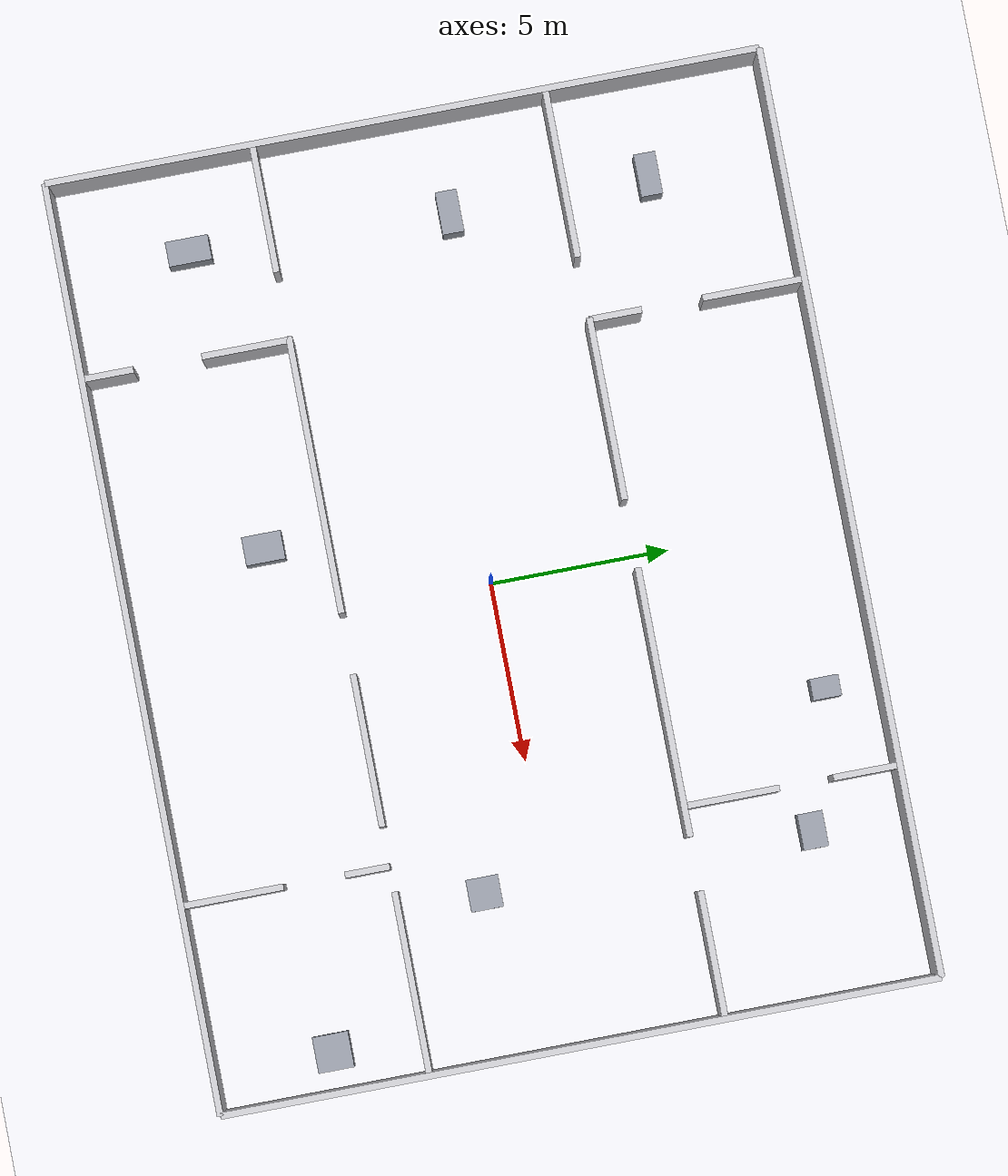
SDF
<?xml version="1.0"?>
<sdf version="1.9"><world name="new_room_world">
<plugin filename="gz-sim-physics-system" name="gz::sim::systems::Physics"/><plugin filename="gz-sim-user-commands-system" name="gz::sim::systems::UserCommands"/><plugin filename="gz-sim-scene-broadcaster-system" name="gz::sim::systems::SceneBroadcaster"/><plugin filename="gz-sim-sensors-system" name="gz::sim::systems::Sensors"><render_engine>ogre2</render_engine></plugin><plugin filename="gz-sim-imu-system" name="gz::sim::systems::Imu"/>
<physics name="new_room_realtime" type="ignored"><max_step_size>0.001</max_step_size><real_time_factor>1</real_time_factor></physics><gravity>0 0 -9.8</gravity><scene><ambient>0.85 0.85 0.87 1</ambient><background>0.68 0.68 0.71 1</background><shadows>false</shadows></scene><light name="sun" type="directional"><cast_shadows>false</cast_shadows><pose>0 0 10 0 0 0</pose><diffuse>0.95 0.95 0.95 1</diffuse><direction>-0.3 0.2 -1</direction></light>
<model name="new_room_ground"><static>true</static><link name="ground_link"><collision name="ground_collision"><geometry><plane><normal>0 0 1</normal><size>40 32</size></plane></geometry></collision><visual name="ground_visual"><geometry><plane><normal>0 0 1</normal><size>40 32</size></plane></geometry><material><ambient>0.92 0.92 0.94 1</ambient><diffuse>0.92 0.92 0.94 1</diffuse></material></visual></link></model>
<model name="mini_hospital_structure"><static>true</static><link name="structure">
<collision name="mx048_c000"><pose>0 10 1.25 0 0 0</pose><geometry><box><size>26 0.18 2.5</size></box></geometry></collision><visual name="mx048_v000"><pose>0 10 1.25 0 0 0</pose><geometry><box><size>26 0.18 2.5</size></box></geometry><material><ambient>0.78 0.78 0.80 1</ambient><diffuse>0.78 0.78 0.80 1</diffuse></material></visual>
<collision name="mx048_c001"><pose>0 -10 1.25 0 0 0</pose><geometry><box><size>26 0.18 2.5</size></box></geometry></collision><visual name="mx048_v001"><pose>0 -10 1.25 0 0 0</pose><geometry><box><size>26 0.18 2.5</size></box></geometry><material><ambient>0.78 0.78 0.80 1</ambient><diffuse>0.78 0.78 0.80 1</diffuse></material></visual>
<collision name="mx048_c002"><pose>-13 0 1.25 0 0 0</pose><geometry><box><size>0.18 20 2.5</size></box></geometry></collision><visual name="mx048_v002"><pose>-13 0 1.25 0 0 0</pose><geometry><box><size>0.18 20 2.5</size></box></geometry><material><ambient>0.78 0.78 0.80 1</ambient><diffuse>0.78 0.78 0.80 1</diffuse></material></visual>
<collision name="mx048_c003"><pose>13 0 1.25 0 0 0</pose><geometry><box><size>0.18 20 2.5</size></box></geometry></collision><visual name="mx048_v003"><pose>13 0 1.25 0 0 0</pose><geometry><box><size>0.18 20 2.5</size></box></geometry><material><ambient>0.78 0.78 0.80 1</ambient><diffuse>0.78 0.78 0.80 1</diffuse></material></visual>
<collision name="mx048_c004"><pose>-10.58 4 1.25 0 0 0</pose><geometry><box><size>4.66 0.18 2.5</size></box></geometry></collision><visual name="mx048_v004"><pose>-10.58 4 1.25 0 0 0</pose><geometry><box><size>4.66 0.18 2.5</size></box></geometry><material><ambient>0.78 0.78 0.80 1</ambient><diffuse>0.78 0.78 0.80 1</diffuse></material></visual>
<collision name="mx048_c005"><pose>-4 4 1.25 0 0 0</pose><geometry><box><size>5.1 0.18 2.5</size></box></geometry></collision><visual name="mx048_v005"><pose>-4 4 1.25 0 0 0</pose><geometry><box><size>5.1 0.18 2.5</size></box></geometry><material><ambient>0.78 0.78 0.80 1</ambient><diffuse>0.78 0.78 0.80 1</diffuse></material></visual>
<collision name="mx048_c006"><pose>4.2 4 1.25 0 0 0</pose><geometry><box><size>7.5 0.18 2.5</size></box></geometry></collision><visual name="mx048_v006"><pose>4.2 4 1.25 0 0 0</pose><geometry><box><size>7.5 0.18 2.5</size></box></geometry><material><ambient>0.78 0.78 0.80 1</ambient><diffuse>0.78 0.78 0.80 1</diffuse></material></visual>
<collision name="mx048_c007"><pose>11.18 4 1.25 0 0 0</pose><geometry><box><size>3.46 0.18 2.5</size></box></geometry></collision><visual name="mx048_v007"><pose>11.18 4 1.25 0 0 0</pose><geometry><box><size>3.46 0.18 2.5</size></box></geometry><material><ambient>0.78 0.78 0.80 1</ambient><diffuse>0.78 0.78 0.80 1</diffuse></material></visual>
<collision name="mx048_c008"><pose>-11.155 -4.2 1.25 0 0 0</pose><geometry><box><size>3.51 0.18 2.5</size></box></geometry></collision><visual name="mx048_v008"><pose>-11.155 -4.2 1.25 0 0 0</pose><geometry><box><size>3.51 0.18 2.5</size></box></geometry><material><ambient>0.78 0.78 0.80 1</ambient><diffuse>0.78 0.78 0.80 1</diffuse></material></visual>
<collision name="mx048_c009"><pose>-3.725 -4.2 1.25 0 0 0</pose><geometry><box><size>7.75 0.18 2.5</size></box></geometry></collision><visual name="mx048_v009"><pose>-3.725 -4.2 1.25 0 0 0</pose><geometry><box><size>7.75 0.18 2.5</size></box></geometry><material><ambient>0.78 0.78 0.80 1</ambient><diffuse>0.78 0.78 0.80 1</diffuse></material></visual>
<collision name="mx048_c010"><pose>3.975 -4.2 1.25 0 0 0</pose><geometry><box><size>4.25 0.18 2.5</size></box></geometry></collision><visual name="mx048_v010"><pose>3.975 -4.2 1.25 0 0 0</pose><geometry><box><size>4.25 0.18 2.5</size></box></geometry><material><ambient>0.78 0.78 0.80 1</ambient><diffuse>0.78 0.78 0.80 1</diffuse></material></visual>
<collision name="mx048_c011"><pose>10.405 -4.2 1.25 0 0 0</pose><geometry><box><size>5.01 0.18 2.5</size></box></geometry></collision><visual name="mx048_v011"><pose>10.405 -4.2 1.25 0 0 0</pose><geometry><box><size>5.01 0.18 2.5</size></box></geometry><material><ambient>0.78 0.78 0.80 1</ambient><diffuse>0.78 0.78 0.80 1</diffuse></material></visual>
<collision name="mx048_c012"><pose>-6.5 4.725 1.25 0 0 0</pose><geometry><box><size>0.18 1.45 2.5</size></box></geometry></collision><visual name="mx048_v012"><pose>-6.5 4.725 1.25 0 0 0</pose><geometry><box><size>0.18 1.45 2.5</size></box></geometry><material><ambient>0.78 0.78 0.80 1</ambient><diffuse>0.78 0.78 0.80 1</diffuse></material></visual>
<collision name="mx048_c013"><pose>-6.5 8.53 1.25 0 0 0</pose><geometry><box><size>0.18 2.76 2.5</size></box></geometry></collision><visual name="mx048_v013"><pose>-6.5 8.53 1.25 0 0 0</pose><geometry><box><size>0.18 2.76 2.5</size></box></geometry><material><ambient>0.78 0.78 0.80 1</ambient><diffuse>0.78 0.78 0.80 1</diffuse></material></visual>
<collision name="mx048_c014"><pose>7.1 5.325 1.25 0 0 0</pose><geometry><box><size>0.18 2.65 2.5</size></box></geometry></collision><visual name="mx048_v014"><pose>7.1 5.325 1.25 0 0 0</pose><geometry><box><size>0.18 2.65 2.5</size></box></geometry><material><ambient>0.78 0.78 0.80 1</ambient><diffuse>0.78 0.78 0.80 1</diffuse></material></visual>
<collision name="mx048_c015"><pose>7.1 9.03 1.25 0 0 0</pose><geometry><box><size>0.18 1.76 2.5</size></box></geometry></collision><visual name="mx048_v015"><pose>7.1 9.03 1.25 0 0 0</pose><geometry><box><size>0.18 1.76 2.5</size></box></geometry><material><ambient>0.78 0.78 0.80 1</ambient><diffuse>0.78 0.78 0.80 1</diffuse></material></visual>
<collision name="mx048_c016"><pose>-7.5 -9.23 1.25 0 0 0</pose><geometry><box><size>0.18 1.36 2.5</size></box></geometry></collision><visual name="mx048_v016"><pose>-7.5 -9.23 1.25 0 0 0</pose><geometry><box><size>0.18 1.36 2.5</size></box></geometry><material><ambient>0.78 0.78 0.80 1</ambient><diffuse>0.78 0.78 0.80 1</diffuse></material></visual>
<collision name="mx048_c017"><pose>-7.5 -5.425 1.25 0 0 0</pose><geometry><box><size>0.18 2.45 2.5</size></box></geometry></collision><visual name="mx048_v017"><pose>-7.5 -5.425 1.25 0 0 0</pose><geometry><box><size>0.18 2.45 2.5</size></box></geometry><material><ambient>0.78 0.78 0.80 1</ambient><diffuse>0.78 0.78 0.80 1</diffuse></material></visual>
<collision name="mx048_c018"><pose>7.2 -8.53 1.25 0 0 0</pose><geometry><box><size>0.18 2.76 2.5</size></box></geometry></collision><visual name="mx048_v018"><pose>7.2 -8.53 1.25 0 0 0</pose><geometry><box><size>0.18 2.76 2.5</size></box></geometry><material><ambient>0.78 0.78 0.80 1</ambient><diffuse>0.78 0.78 0.80 1</diffuse></material></visual>
<collision name="mx048_c019"><pose>7.2 -4.825 1.25 0 0 0</pose><geometry><box><size>0.18 1.25 2.5</size></box></geometry></collision><visual name="mx048_v019"><pose>7.2 -4.825 1.25 0 0 0</pose><geometry><box><size>0.18 1.25 2.5</size></box></geometry><material><ambient>0.78 0.78 0.80 1</ambient><diffuse>0.78 0.78 0.80 1</diffuse></material></visual>
<collision name="mx048_c020"><pose>-10.3 6.4 0.6 0 0 0</pose><geometry><box><size>1.2 0.6 1.2</size></box></geometry></collision><visual name="mx048_v020"><pose>-10.3 6.4 0.6 0 0 0</pose><geometry><box><size>1.2 0.6 1.2</size></box></geometry><material><ambient>0.58 0.60 0.64 1</ambient><diffuse>0.58 0.60 0.64 1</diffuse></material></visual>
<collision name="mx048_c021"><pose>4.6 8.5 0.6 0 0 0</pose><geometry><box><size>0.6 0.8 1.2</size></box></geometry></collision><visual name="mx048_v021"><pose>4.6 8.5 0.6 0 0 0</pose><geometry><box><size>0.6 0.8 1.2</size></box></geometry><material><ambient>0.58 0.60 0.64 1</ambient><diffuse>0.58 0.60 0.64 1</diffuse></material></visual>
<collision name="mx048_c022"><pose>8.4 7.4 0.6 0 0 0</pose><geometry><box><size>1 0.7 1.2</size></box></geometry></collision><visual name="mx048_v022"><pose>8.4 7.4 0.6 0 0 0</pose><geometry><box><size>1 0.7 1.2</size></box></geometry><material><ambient>0.58 0.60 0.64 1</ambient><diffuse>0.58 0.60 0.64 1</diffuse></material></visual>
<collision name="mx048_c023"><pose>-10.6 -6.5 0.6 0 0 0</pose><geometry><box><size>0.7 1.2 1.2</size></box></geometry></collision><visual name="mx048_v023"><pose>-10.6 -6.5 0.6 0 0 0</pose><geometry><box><size>0.7 1.2 1.2</size></box></geometry><material><ambient>0.58 0.60 0.64 1</ambient><diffuse>0.58 0.60 0.64 1</diffuse></material></visual>
<collision name="mx048_c024"><pose>-2.1 -6 0.6 0 0 0</pose><geometry><box><size>0.8 1.1 1.2</size></box></geometry></collision><visual name="mx048_v024"><pose>-2.1 -6 0.6 0 0 0</pose><geometry><box><size>0.8 1.1 1.2</size></box></geometry><material><ambient>0.58 0.60 0.64 1</ambient><diffuse>0.58 0.60 0.64 1</diffuse></material></visual>
<collision name="mx048_c025"><pose>11.9 -6.7 0.6 0 0 0</pose><geometry><box><size>1 1 1.2</size></box></geometry></collision><visual name="mx048_v025"><pose>11.9 -6.7 0.6 0 0 0</pose><geometry><box><size>1 1 1.2</size></box></geometry><material><ambient>0.58 0.60 0.64 1</ambient><diffuse>0.58 0.60 0.64 1</diffuse></material></visual>
<collision name="mx048_c026"><pose>-10.3 0.8 0.6 0 0 0</pose><geometry><box><size>1.2 0.6 1.2</size></box></geometry></collision><visual name="mx048_v026"><pose>-10.3 0.8 0.6 0 0 0</pose><geometry><box><size>1.2 0.6 1.2</size></box></geometry><material><ambient>0.58 0.60 0.64 1</ambient><diffuse>0.58 0.60 0.64 1</diffuse></material></visual>
<collision name="mx048_c027"><pose>8.4 -1.8 0.6 0 0 0</pose><geometry><box><size>0.9 0.9 1.2</size></box></geometry></collision><visual name="mx048_v027"><pose>8.4 -1.8 0.6 0 0 0</pose><geometry><box><size>0.9 0.9 1.2</size></box></geometry><material><ambient>0.58 0.60 0.64 1</ambient><diffuse>0.58 0.60 0.64 1</diffuse></material></visual>
</link></model></world></sdf>
